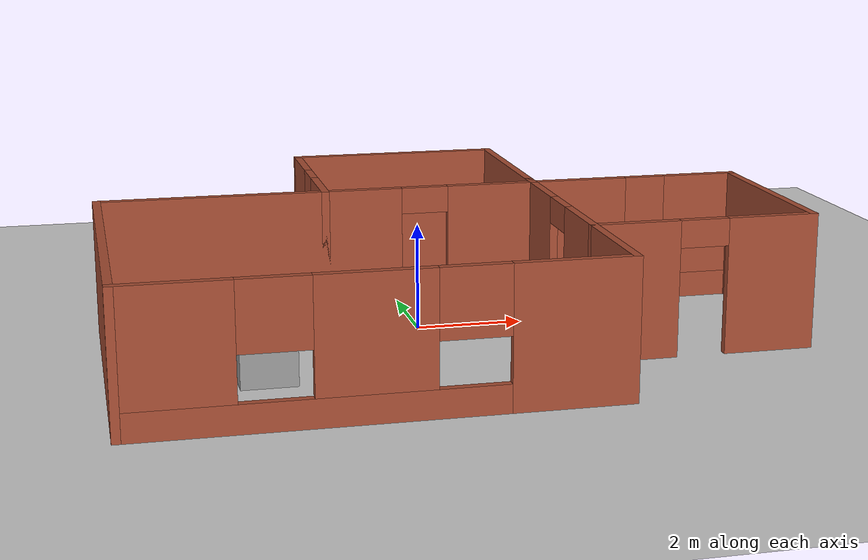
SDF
<sdf version="1.7">
 <world name="default">
  <light name="sun" type="directional">
   <pose>0 0 10 0 -0 0</pose>
   <diffuse>0.8 0.8 0.8 1</diffuse>
   <specular>0.2 0.2 0.2 1</specular>
   <attenuation>
    <range>1000</range>
    <constant>0.9</constant>
    <linear>0.01</linear>
    <quadratic>0.001</quadratic>
   </attenuation>
   <direction>-0.5 0.1 -0.9</direction>
   <spot><inner_angle>0</inner_angle><outer_angle>0</outer_angle><falloff>0</falloff></spot>
  </light>
  <model name="ground_plane">
   <static>1</static>
   <link name="link">
    <collision name="collision">
     <geometry><plane><normal>0 0 1</normal><size>100 100</size></plane></geometry>
     <surface>
      <contact><collide_bitmask>65535</collide_bitmask></contact>
      <friction><ode><mu>100</mu><mu2>50</mu2></ode></friction>
     </surface>
    </collision>
    <visual name="visual">
     <cast_shadows>0</cast_shadows>
     <geometry><plane><normal>0 0 1</normal><size>100 100</size></plane></geometry>
     <material>
      <script><uri>file://media/materials/scripts/gazebo.material</uri><name>Gazebo/Grey</name></script>
     </material>
    </visual>
   </link>
  </model>
  <gravity>0 0 -9.8</gravity>
  <magnetic_field>6e-06 2.3e-05 -4.2e-05</magnetic_field>
  <atmosphere type="adiabatic"/>
  <physics type="ode">
   <max_step_size>0.001</max_step_size>
   <real_time_factor>1</real_time_factor>
   <real_time_update_rate>1000</real_time_update_rate>
  </physics>
  <scene><ambient>0.4 0.4 0.4 1</ambient><background>0.7 0.7 0.7 1</background><shadows>1</shadows></scene>
  <spherical_coordinates>
   <surface_model>EARTH_WGS84</surface_model>
   <latitude_deg>0</latitude_deg>
   <longitude_deg>0</longitude_deg>
   <elevation>0</elevation>
   <heading_deg>0</heading_deg>
  </spherical_coordinates>
  <model name="house">
   <pose>0.416914 -0.167259 0 0 -0 0</pose>
   <link name="Wall_15">
    <pose>2.125 -1.675 0 0 -0 -1.5708</pose>
    <visual name="Wall_15_Visual_0">
     <pose>-2.36107 0 1.25 0 -0 0</pose>
     <geometry><box><size>1.77786 0.15 2.5</size></box></geometry>
     <material>
      <script><uri>file://media/materials/scripts/gazebo.material</uri><name>Gazebo/Bricks</name></script>
      <ambient>1 0.764706 0.305882 1</ambient>
     </material>
     <meta><layer>0</layer></meta>
    </visual>
    <collision name="Wall_15_Collision_0">
     <geometry><box><size>1.77786 0.15 2.5</size></box></geometry>
     <pose>-2.36107 0 1.25 0 -0 0</pose>
    </collision>
    <visual name="Wall_15_Visual_1">
     <pose>1.33893 0 1.25 0 -0 0</pose>
     <geometry><box><size>3.82214 0.15 2.5</size></box></geometry>
     <material>
      <script><uri>file://media/materials/scripts/gazebo.material</uri><name>Gazebo/Bricks</name></script>
      <ambient>1 0.764706 0.305882 1</ambient>
     </material>
     <meta><layer>0</layer></meta>
    </visual>
    <collision name="Wall_15_Collision_1">
     <geometry><box><size>3.82214 0.15 2.5</size></box></geometry>
     <pose>1.33893 0 1.25 0 -0 0</pose>
    </collision>
    <visual name="Wall_15_Visual_2">
     <pose>-1.02214 0 2.25 0 -0 0</pose>
     <geometry><box><size>0.9 0.15 0.5</size></box></geometry>
     <material>
      <script><uri>file://media/materials/scripts/gazebo.material</uri><name>Gazebo/Bricks</name></script>
      <ambient>1 0.764706 0.305882 1</ambient>
     </material>
     <meta><layer>0</layer></meta>
    </visual>
    <collision name="Wall_15_Collision_2">
     <geometry><box><size>0.9 0.15 0.5</size></box></geometry>
     <pose>-1.02214 0 2.25 0 -0 0</pose>
    </collision>
   </link>
   <link name="Wall_16">
    <pose>-2.05 -4.85 0 0 -0 3.14159</pose>
    <visual name="Wall_16_Visual_0">
     <pose>-3.17796 0 1.25 0 -0 0</pose>
     <geometry><box><size>2.14407 0.15 2.5</size></box></geometry>
     <material>
      <script><uri>file://media/materials/scripts/gazebo.material</uri><name>Gazebo/Bricks</name></script>
      <ambient>0.435294 0.796078 0.67451 1</ambient>
     </material>
     <meta><layer>0</layer></meta>
    </visual>
    <collision name="Wall_16_Collision_0">
     <geometry><box><size>2.14407 0.15 2.5</size></box></geometry>
     <pose>-3.17796 0 1.25 0 -0 0</pose>
    </collision>
    <visual name="Wall_16_Visual_1">
     <pose>1.07204 0 0.25 0 -0 0</pose>
     <geometry><box><size>6.35593 0.15 0.5</size></box></geometry>
     <material>
      <script><uri>file://media/materials/scripts/gazebo.material</uri><name>Gazebo/Bricks</name></script>
      <ambient>0.435294 0.796078 0.67451 1</ambient>
     </material>
     <meta><layer>0</layer></meta>
    </visual>
    <collision name="Wall_16_Collision_1">
     <geometry><box><size>6.35593 0.15 0.5</size></box></geometry>
     <pose>1.07204 0 0.25 0 -0 0</pose>
    </collision>
    <visual name="Wall_16_Visual_2">
     <pose>0.096587 0 1.5 0 -0 0</pose>
     <geometry><box><size>1.99611 0.15 2</size></box></geometry>
     <material>
      <script><uri>file://media/materials/scripts/gazebo.material</uri><name>Gazebo/Bricks</name></script>
      <ambient>0.435294 0.796078 0.67451 1</ambient>
     </material>
     <meta><layer>0</layer></meta>
    </visual>
    <collision name="Wall_16_Collision_2">
     <geometry><box><size>1.99611 0.15 2</size></box></geometry>
     <pose>0.096587 0 1.5 0 -0 0</pose>
    </collision>
    <visual name="Wall_16_Visual_3">
     <pose>3.27472 0 1.5 0 -0 0</pose>
     <geometry><box><size>1.95057 0.15 2</size></box></geometry>
     <material>
      <script><uri>file://media/materials/scripts/gazebo.material</uri><name>Gazebo/Bricks</name></script>
      <ambient>0.435294 0.796078 0.67451 1</ambient>
     </material>
     <meta><layer>0</layer></meta>
    </visual>
    <collision name="Wall_16_Collision_3">
     <geometry><box><size>1.95057 0.15 2</size></box></geometry>
     <pose>3.27472 0 1.5 0 -0 0</pose>
    </collision>
    <visual name="Wall_16_Visual_4">
     <pose>-1.5037 0 1.9 0 -0 0</pose>
     <geometry><box><size>1.20446 0.15 1.2</size></box></geometry>
     <material>
      <script><uri>file://media/materials/scripts/gazebo.material</uri><name>Gazebo/Bricks</name></script>
      <ambient>0.435294 0.796078 0.67451 1</ambient>
     </material>
     <meta><layer>0</layer></meta>
    </visual>
    <collision name="Wall_16_Collision_4">
     <geometry><box><size>1.20446 0.15 1.2</size></box></geometry>
     <pose>-1.5037 0 1.9 0 -0 0</pose>
    </collision>
    <visual name="Wall_16_Visual_5">
     <pose>1.69704 0 1.9 0 -0 0</pose>
     <geometry><box><size>1.20479 0.15 1.2</size></box></geometry>
     <material>
      <script><uri>file://media/materials/scripts/gazebo.material</uri><name>Gazebo/Bricks</name></script>
      <ambient>0.435294 0.796078 0.67451 1</ambient>
     </material>
     <meta><layer>0</layer></meta>
    </visual>
    <collision name="Wall_16_Collision_5">
     <geometry><box><size>1.20479 0.15 1.2</size></box></geometry>
     <pose>1.69704 0 1.9 0 -0 0</pose>
    </collision>
   </link>
   <link name="Wall_17">
    <collision name="Wall_17_Collision">
     <geometry><box><size>6.25 0.15 2.5</size></box></geometry>
     <pose>0 0 1.25 0 -0 0</pose>
    </collision>
    <visual name="Wall_17_Visual">
     <pose>0 0 1.25 0 -0 0</pose>
     <geometry><box><size>6.25 0.15 2.5</size></box></geometry>
     <material>
      <script><uri>file://media/materials/scripts/gazebo.material</uri><name>Gazebo/Bricks</name></script>
      <ambient>0.435294 0.796078 0.67451 1</ambient>
     </material>
     <meta><layer>0</layer></meta>
    </visual>
    <pose>-6.225 -1.8 0 0 -0 1.5708</pose>
   </link>
   <link name="Wall_18">
    <pose>-2.05 1.25 0 0 -0 0</pose>
    <visual name="Wall_18_Visual_0">
     <pose>-1.34936 0 1.25 0 -0 0</pose>
     <geometry><box><size>5.80129 0.15 2.5</size></box></geometry>
     <material>
      <script><uri>file://media/materials/scripts/gazebo.material</uri><name>Gazebo/Bricks</name></script>
      <ambient>0.435294 0.796078 0.67451 1</ambient>
     </material>
     <meta><layer>0</layer></meta>
    </visual>
    <collision name="Wall_18_Collision_0">
     <geometry><box><size>5.80129 0.15 2.5</size></box></geometry>
     <pose>-1.34936 0 1.25 0 -0 0</pose>
    </collision>
    <visual name="Wall_18_Visual_1">
     <pose>3.35064 0 1.25 0 -0 0</pose>
     <geometry><box><size>1.79871 0.15 2.5</size></box></geometry>
     <material>
      <script><uri>file://media/materials/scripts/gazebo.material</uri><name>Gazebo/Bricks</name></script>
      <ambient>0.435294 0.796078 0.67451 1</ambient>
     </material>
     <meta><layer>0</layer></meta>
    </visual>
    <collision name="Wall_18_Collision_1">
     <geometry><box><size>1.79871 0.15 2.5</size></box></geometry>
     <pose>3.35064 0 1.25 0 -0 0</pose>
    </collision>
    <visual name="Wall_18_Visual_2">
     <pose>2.00129 0 2.25 0 -0 0</pose>
     <geometry><box><size>0.9 0.15 0.5</size></box></geometry>
     <material>
      <script><uri>file://media/materials/scripts/gazebo.material</uri><name>Gazebo/Bricks</name></script>
      <ambient>0.435294 0.796078 0.67451 1</ambient>
     </material>
     <meta><layer>0</layer></meta>
    </visual>
    <collision name="Wall_18_Collision_2">
     <geometry><box><size>0.9 0.15 0.5</size></box></geometry>
     <pose>2.00129 0 2.25 0 -0 0</pose>
    </collision>
   </link>
   <link name="Wall_19">
    <collision name="Wall_19_Collision">
     <geometry><box><size>3.75 0.15 2.5</size></box></geometry>
     <pose>0 0 1.25 0 -0 0</pose>
    </collision>
    <visual name="Wall_19_Visual">
     <pose>0 0 1.25 0 -0 0</pose>
     <geometry><box><size>3.75 0.15 2.5</size></box></geometry>
     <material>
      <script><uri>file://media/materials/scripts/gazebo.material</uri><name>Gazebo/Bricks</name></script>
      <ambient>1 1 1 1</ambient>
     </material>
     <meta><layer>0</layer></meta>
    </visual>
    <pose>2.125 3.05 0 0 -0 1.5708</pose>
   </link>
   <link name="Wall_20">
    <collision name="Wall_20_Collision">
     <geometry><box><size>4.25 0.15 2.5</size></box></geometry>
     <pose>0 0 1.25 0 -0 0</pose>
    </collision>
    <visual name="Wall_20_Visual">
     <pose>0 0 1.25 0 -0 0</pose>
     <geometry><box><size>4.25 0.15 2.5</size></box></geometry>
     <material>
      <script><uri>file://media/materials/scripts/gazebo.material</uri><name>Gazebo/Bricks</name></script>
      <ambient>0.435294 0.796078 0.67451 1</ambient>
     </material>
     <meta><layer>0</layer></meta>
    </visual>
    <pose>0.075 4.85 0 0 -0 3.14159</pose>
   </link>
   <link name="Wall_21">
    <pose>-1.975 3.05 0 0 -0 -1.5708</pose>
    <visual name="Wall_21_Visual_0">
     <pose>-1.10712 0 1.25 0 -0 0</pose>
     <geometry><box><size>1.53576 0.15 2.5</size></box></geometry>
     <material>
      <script><uri>file://media/materials/scripts/gazebo.material</uri><name>Gazebo/Bricks</name></script>
      <ambient>1 1 1 1</ambient>
     </material>
     <meta><layer>0</layer></meta>
    </visual>
    <collision name="Wall_21_Collision_0">
     <geometry><box><size>1.53576 0.15 2.5</size></box></geometry>
     <pose>-1.10712 0 1.25 0 -0 0</pose>
    </collision>
    <visual name="Wall_21_Visual_1">
     <pose>0.767878 0 0.25 0 -0 0</pose>
     <geometry><box><size>2.21424 0.15 0.5</size></box></geometry>
     <material>
      <script><uri>file://media/materials/scripts/gazebo.material</uri><name>Gazebo/Bricks</name></script>
      <ambient>1 1 1 1</ambient>
     </material>
     <meta><layer>0</layer></meta>
    </visual>
    <collision name="Wall_21_Collision_1">
     <geometry><box><size>2.21424 0.15 0.5</size></box></geometry>
     <pose>0.767878 0 0.25 0 -0 0</pose>
    </collision>
    <visual name="Wall_21_Visual_2">
     <pose>1.16788 0 1.5 0 -0 0</pose>
     <geometry><box><size>1.41424 0.15 2</size></box></geometry>
     <material>
      <script><uri>file://media/materials/scripts/gazebo.material</uri><name>Gazebo/Bricks</name></script>
      <ambient>1 1 1 1</ambient>
     </material>
     <meta><layer>0</layer></meta>
    </visual>
    <collision name="Wall_21_Collision_2">
     <geometry><box><size>1.41424 0.15 2</size></box></geometry>
     <pose>1.16788 0 1.5 0 -0 0</pose>
    </collision>
    <visual name="Wall_21_Visual_3">
     <pose>0.060756 0 1.9 0 -0 0</pose>
     <geometry><box><size>0.8 0.15 1.2</size></box></geometry>
     <material>
      <script><uri>file://media/materials/scripts/gazebo.material</uri><name>Gazebo/Bricks</name></script>
      <ambient>1 1 1 1</ambient>
     </material>
     <meta><layer>0</layer></meta>
    </visual>
    <collision name="Wall_21_Collision_3">
     <geometry><box><size>0.8 0.15 1.2</size></box></geometry>
     <pose>0.060756 0 1.9 0 -0 0</pose>
    </collision>
   </link>
   <link name="Wall_23">
    <pose>4.175 1.25 0 0 -0 0</pose>
    <visual name="Wall_23_Visual_0">
     <pose>-1.14551 0 1.25 0 -0 0</pose>
     <geometry><box><size>1.95898 0.15 2.5</size></box></geometry>
     <material>
      <script><uri>file://media/materials/scripts/gazebo.material</uri><name>Gazebo/Bricks</name></script>
      <ambient>1 0.764706 0.305882 1</ambient>
     </material>
     <meta><layer>0</layer></meta>
    </visual>
    <collision name="Wall_23_Collision_0">
     <geometry><box><size>1.95898 0.15 2.5</size></box></geometry>
     <pose>-1.14551 0 1.25 0 -0 0</pose>
    </collision>
    <visual name="Wall_23_Visual_1">
     <pose>0.97949 0 0.25 0 -0 0</pose>
     <geometry><box><size>2.29102 0.15 0.5</size></box></geometry>
     <material>
      <script><uri>file://media/materials/scripts/gazebo.material</uri><name>Gazebo/Bricks</name></script>
      <ambient>1 0.764706 0.305882 1</ambient>
     </material>
     <meta><layer>0</layer></meta>
    </visual>
    <collision name="Wall_23_Collision_1">
     <geometry><box><size>2.29102 0.15 0.5</size></box></geometry>
     <pose>0.97949 0 0.25 0 -0 0</pose>
    </collision>
    <visual name="Wall_23_Visual_2">
     <pose>1.37949 0 1.5 0 -0 0</pose>
     <geometry><box><size>1.49102 0.15 2</size></box></geometry>
     <material>
      <script><uri>file://media/materials/scripts/gazebo.material</uri><name>Gazebo/Bricks</name></script>
      <ambient>1 0.764706 0.305882 1</ambient>
     </material>
     <meta><layer>0</layer></meta>
    </visual>
    <collision name="Wall_23_Collision_2">
     <geometry><box><size>1.49102 0.15 2</size></box></geometry>
     <pose>1.37949 0 1.5 0 -0 0</pose>
    </collision>
    <visual name="Wall_23_Visual_3">
     <pose>0.233981 0 1.9 0 -0 0</pose>
     <geometry><box><size>0.8 0.15 1.2</size></box></geometry>
     <material>
      <script><uri>file://media/materials/scripts/gazebo.material</uri><name>Gazebo/Bricks</name></script>
      <ambient>1 0.764706 0.305882 1</ambient>
     </material>
     <meta><layer>0</layer></meta>
    </visual>
    <collision name="Wall_23_Collision_3">
     <geometry><box><size>0.8 0.15 1.2</size></box></geometry>
     <pose>0.233981 0 1.9 0 -0 0</pose>
    </collision>
   </link>
   <link name="Wall_24">
    <collision name="Wall_24_Collision">
     <geometry><box><size>4 0.15 2.5</size></box></geometry>
     <pose>0 0 1.25 0 -0 0</pose>
    </collision>
    <visual name="Wall_24_Visual">
     <pose>0 0 1.25 0 -0 0</pose>
     <geometry><box><size>4 0.15 2.5</size></box></geometry>
     <material>
      <script><uri>file://media/materials/scripts/gazebo.material</uri><name>Gazebo/Bricks</name></script>
      <ambient>1 0.764706 0.305882 1</ambient>
     </material>
     <meta><layer>0</layer></meta>
    </visual>
    <pose>6.225 -0.675 0 0 -0 -1.5708</pose>
   </link>
   <link name="Wall_25">
    <pose>4.175 -2.6 0 0 -0 3.14159</pose>
    <visual name="Wall_25_Visual_0">
     <pose>-1.28066 0 1.25 0 -0 0</pose>
     <geometry><box><size>1.68867 0.15 2.5</size></box></geometry>
     <material>
      <script><uri>file://media/materials/scripts/gazebo.material</uri><name>Gazebo/Bricks</name></script>
      <ambient>1 0.764706 0.305882 1</ambient>
     </material>
     <meta><layer>0</layer></meta>
    </visual>
    <collision name="Wall_25_Collision_0">
     <geometry><box><size>1.68867 0.15 2.5</size></box></geometry>
     <pose>-1.28066 0 1.25 0 -0 0</pose>
    </collision>
    <visual name="Wall_25_Visual_1">
     <pose>1.29434 0 1.25 0 -0 0</pose>
     <geometry><box><size>1.66133 0.15 2.5</size></box></geometry>
     <material>
      <script><uri>file://media/materials/scripts/gazebo.material</uri><name>Gazebo/Bricks</name></script>
      <ambient>1 0.764706 0.305882 1</ambient>
     </material>
     <meta><layer>0</layer></meta>
    </visual>
    <collision name="Wall_25_Collision_1">
     <geometry><box><size>1.66133 0.15 2.5</size></box></geometry>
     <pose>1.29434 0 1.25 0 -0 0</pose>
    </collision>
    <visual name="Wall_25_Visual_2">
     <pose>0.013669 0 2.25 0 -0 0</pose>
     <geometry><box><size>0.9 0.15 0.5</size></box></geometry>
     <material>
      <script><uri>file://media/materials/scripts/gazebo.material</uri><name>Gazebo/Bricks</name></script>
      <ambient>1 0.764706 0.305882 1</ambient>
     </material>
     <meta><layer>0</layer></meta>
    </visual>
    <collision name="Wall_25_Collision_2">
     <geometry><box><size>0.9 0.15 0.5</size></box></geometry>
     <pose>0.013669 0 2.25 0 -0 0</pose>
    </collision>
   </link>
   <static>1</static>
  </model>
  <model name="unit_box">
   <pose>-3.17761 -2.44125 0.5 0 -0 0</pose>
   <link name="link">
    <inertial>
     <mass>1</mass>
     <inertia>
      <ixx>0.166667</ixx>
      <ixy>0</ixy>
      <ixz>0</ixz>
      <iyy>0.166667</iyy>
      <iyz>0</iyz>
      <izz>0.166667</izz>
     </inertia>
    </inertial>
    <collision name="collision"><geometry><box><size>1 1 1</size></box></geometry></collision>
    <visual name="visual">
     <geometry><box><size>1 1 1</size></box></geometry>
     <material>
      <script><name>Gazebo/Grey</name><uri>file://media/materials/scripts/gazebo.material</uri></script>
     </material>
    </visual>
   </link>
  </model>
  <model name="unit_cylinder">
   <pose>-0.679323 -2.30476 0.5 0 -0 0</pose>
   <link name="link">
    <inertial>
     <mass>1</mass>
     <inertia><ixx>0.145833</ixx><ixy>0</ixy><ixz>0</ixz><iyy>0.145833</iyy><iyz>0</iyz><izz>0.125</izz></inertia>
    </inertial>
    <collision name="collision">
     <geometry><cylinder><radius>0.5</radius><length>1</length></cylinder></geometry>
    </collision>
    <visual name="visual">
     <geometry><cylinder><radius>0.5</radius><length>1</length></cylinder></geometry>
     <material>
      <script><name>Gazebo/Grey</name><uri>file://media/materials/scripts/gazebo.material</uri></script>
     </material>
    </visual>
   </link>
  </model>
 </world>
</sdf>
